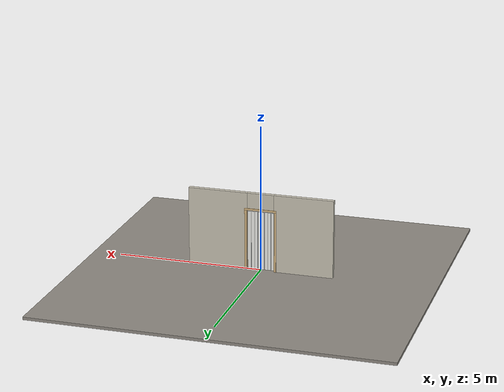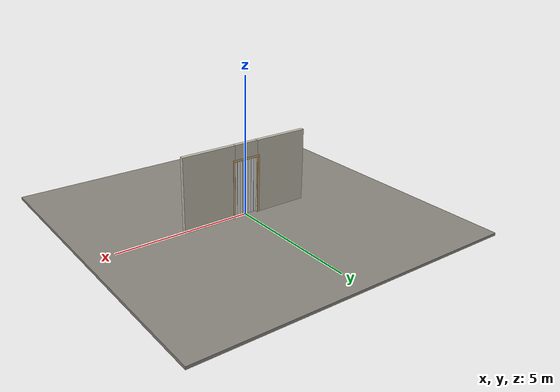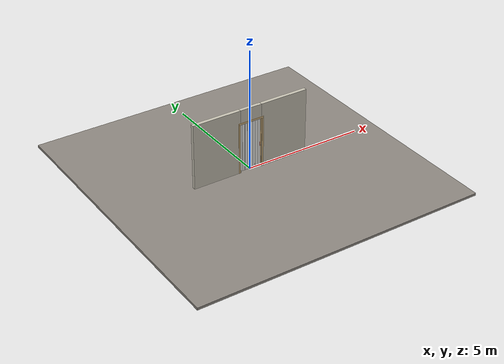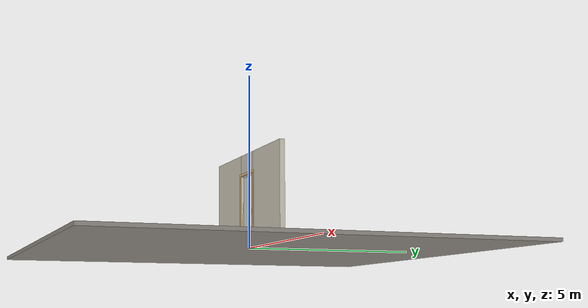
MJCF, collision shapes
<?xml version="1.0" ?>
<mujoco model="db0215_accordion_full">
  <compiler angle="radian" meshdir="../../hardware" texturedir="../../textures" autolimits="true" inertiafromgeom="false"/>
  <option timestep="0.002" integrator="implicitfast" cone="elliptic" impratio="10" noslip_iterations="3">
    <flag multiccd="enable"/>
  </option>
  <size memory="16M"/>
  <default>
    <geom condim="4" solref="0.005 1" solimp="0.95 0.99 0.001"/>
    <joint solreflimit="0.005 1" solimplimit="0.95 0.99 0.001"/>
    <tendon solreflimit="0.005 1"/>
    <equality solref="0.002 1"/>
  </default>
  <visual>
    <headlight ambient="0.4 0.4 0.4" diffuse="0.7 0.7 0.7" specular="0.2 0.2 0.2"/>
    <quality shadowsize="4096"/>
    <map znear="0.01" zfar="60"/>
  </visual>
  <asset>
    <mesh name="pull_1e5d69a91a" file="pull_1e5d69a91a.obj"/>
    <material name="mat_floor" rgba="0.55 0.53 0.5 1" specular="0.2" shininess="0.15" reflectance="0"/>
    <material name="mat_wall" rgba="0.78 0.76 0.7 1" specular="0.2" shininess="0.1" reflectance="0"/>
    <material name="mat_frame" rgba="0.82 0.7 0.5 1" specular="0.2" shininess="0.45" reflectance="0"/>
    <material name="mat_track" rgba="0.8 0.81 0.83 1" specular="0.8" shininess="0.6" reflectance="0.4"/>
    <material name="mat_hinge" rgba="0.65 0.66 0.68 1" specular="0.74" shininess="0.5" reflectance="0.36"/>
    <material name="mat_panel_0_0" rgba="0.93 0.93 0.91 1" specular="0.2" shininess="0.58" reflectance="0"/>
    <material name="mat_panel_0_1" rgba="0.93 0.93 0.91 1" specular="0.2" shininess="0.58" reflectance="0"/>
    <material name="mat_panel_0_2" rgba="0.93 0.93 0.91 1" specular="0.2" shininess="0.58" reflectance="0"/>
    <material name="mat_panel_0_3" rgba="0.93 0.93 0.91 1" specular="0.2" shininess="0.58" reflectance="0"/>
    <material name="mat_panel_0_4" rgba="0.93 0.93 0.91 1" specular="0.2" shininess="0.58" reflectance="0"/>
    <material name="mat_panel_0_5" rgba="0.93 0.93 0.91 1" specular="0.2" shininess="0.58" reflectance="0"/>
    <material name="mat_panel_0_6" rgba="0.93 0.93 0.91 1" specular="0.2" shininess="0.58" reflectance="0"/>
    <material name="mat_panel_0_7" rgba="0.93 0.93 0.91 1" specular="0.2" shininess="0.58" reflectance="0"/>
    <material name="mat_op_stainless" rgba="0.75 0.76 0.77 1" specular="0.8" shininess="0.65" reflectance="0.4"/>
    <texture name="skybox" type="skybox" builtin="gradient" rgb1="0.6 0.7 0.85" rgb2="0.9 0.92 0.95" width="256" height="256"/>
  </asset>
  <worldbody>
    <light name="sun" pos="1.5 -2.5 4" dir="-0.3 0.5 -0.8" directional="true" diffuse="0.8 0.8 0.8" specular="0.3 0.3 0.3" castshadow="true"/>
    <light name="fill" pos="-1.5 2.5 3" dir="0.3 -0.5 -0.7" directional="true" diffuse="0.35 0.35 0.4" castshadow="false"/>
    <camera name="robot_view" pos="0 -2.581563 1.766338" xyaxes="1 0 0 0 0.26963 0.962964" fovy="52"/>
    <camera name="far_view" pos="0 2.581563 1.766338" xyaxes="-1 0 0 0 -0.26963 0.962964" fovy="52"/>
    <camera name="iso" pos="1.961988 -2.168513 2.179388" xyaxes="0.741536 0.670913 0 -0.242917 0.268487 0.932151" fovy="46"/>
    <camera name="detail_handle" pos="0.574894 -0.866 1.28" xyaxes="0.97561 0.219512 0 -0.070934 0.315262 0.94635" fovy="38"/>
    <geom name="floor" type="box" size="6 6 0.05" pos="0 0 -0.05" material="mat_floor" group="0" contype="1" conaffinity="1" friction="0.8 0.005 0.0001" density="2400"/>
    <geom name="wall_left" type="box" size="1.01875 0.0725 1.35" pos="-1.48125 0 1.35" material="mat_wall" group="0" contype="1" conaffinity="1" friction="0.6 0.005 0.0001" density="800"/>
    <geom name="wall_right" type="box" size="1.01875 0.0725 1.35" pos="1.48125 0 1.35" material="mat_wall" group="0" contype="1" conaffinity="1" friction="0.6 0.005 0.0001" density="800"/>
    <geom name="wall_header" type="box" size="0.4625 0.0725 0.3065" pos="0 0 2.3935" material="mat_wall" group="0" contype="1" conaffinity="1" friction="0.6 0.005 0.0001" density="800"/>
    <geom name="jamb_hinge" type="box" size="0.0095 0.0725 1.0435" pos="-0.472 0 1.0435" material="mat_frame" group="0" contype="1" conaffinity="1" friction="0.6 0.005 0.0001" density="400"/>
    <geom name="jamb_strike" type="box" size="0.0095 0.0725 1.0435" pos="0.472 0 1.0435" material="mat_frame" group="0" contype="1" conaffinity="1" friction="0.6 0.005 0.0001" density="400"/>
    <geom name="stud_strike" type="box" size="0.015 0.0725 1.0435" pos="0.4965 0 1.0435" material="mat_wall" group="0" contype="1" conaffinity="1" friction="0.6 0.005 0.0001" density="500"/>
    <geom name="jamb_head" type="box" size="0.4965 0.0725 0.0095" pos="0.015 0 2.0965" material="mat_frame" group="0" contype="1" conaffinity="1" friction="0.6 0.005 0.0001" density="400"/>
    <geom name="head_stud" type="box" size="0.4965 0.0725 0.015" pos="0.015 0 2.121" material="mat_wall" group="0" contype="1" conaffinity="1" friction="0.6 0.005 0.0001" density="500"/>
    <geom name="casing_l_n" type="box" size="0.035 0.008 1.053" pos="-0.5115 -0.0805 1.0435" material="mat_frame" group="2" contype="0" conaffinity="0" density="400"/>
    <geom name="casing_r_n" type="box" size="0.035 0.008 1.053" pos="0.5115 -0.0805 1.0435" material="mat_frame" group="2" contype="0" conaffinity="0" density="400"/>
    <geom name="casing_h_n" type="box" size="0.5465 0.008 0.035" pos="0 -0.0805 2.136" material="mat_frame" group="2" contype="0" conaffinity="0" density="400"/>
    <geom name="casing_l_p" type="box" size="0.035 0.008 1.053" pos="-0.5115 0.0805 1.0435" material="mat_frame" group="2" contype="0" conaffinity="0" density="400"/>
    <geom name="casing_r_p" type="box" size="0.035 0.008 1.053" pos="0.5115 0.0805 1.0435" material="mat_frame" group="2" contype="0" conaffinity="0" density="400"/>
    <geom name="casing_h_p" type="box" size="0.5465 0.008 0.035" pos="0 0.0805 2.136" material="mat_frame" group="2" contype="0" conaffinity="0" density="400"/>
    <geom name="fold_track" type="box" size="0.4625 0.02 0.015" pos="0 0 2.072" material="mat_track" group="1" contype="0" conaffinity="0" density="2700"/>
    <site name="approach_point" pos="0 -1.5 0" quat="1 0 0 0" size="0.05" rgba="0.2 0.9 0.2 0.5" group="4"/>
    <site name="goal_point" pos="0 1.5 0" quat="1 0 0 0" size="0.05" rgba="0.2 0.9 0.2 0.5" group="4"/>
    <site name="door_plane_center" pos="0 0 1.0435" quat="1 0 0 0" size="0.02" rgba="0.2 0.9 0.2 0.5" group="4"/>
    <body name="panel_0_0" pos="-0.4625 0 0">
      <inertial pos="0.058237 0 1.047378" mass="3.661296" quat="0.499812 0.499812 -0.500188 0.500188" diaginertia="0.003520486 1.287614554 1.291046841"/>
      <joint name="panel_0_0_hinge" type="hinge" axis="0 0 -1" pos="0.035 0 0" limited="true" range="0 1.48353" damping="0.916842" frictionloss="3.828596" armature="0.02"/>
      <geom name="panel_0_0_slab" type="box" size="0.0535 0.006 1.016" pos="0.0585 0 1.036" material="mat_panel_0_0" group="0" contype="1" conaffinity="1" friction="0.4 0.005 0.0001" density="1"/>
      <geom name="panel_0_0_pivot_pin" type="cylinder" size="0.008 0.0105" pos="0.035 0 2.0525" material="mat_hinge" group="1" contype="0" conaffinity="0" density="7850"/>
      <body name="panel_0_1" pos="0.114 0 0">
        <inertial pos="0.000152 0.005984 1.036" mass="3.937195" quat="0.519713 -0.479477 0.519713 0.479477" diaginertia="0.000084796 1.328285099 1.32832971"/>
        <joint name="panel_0_1_hinge" type="hinge" axis="0 0 -1" pos="0 0.006 0" limited="true" range="-3.141593 0" damping="0.2" frictionloss="0.1" armature="0.005"/>
        <geom name="panel_0_1_slab" type="box" size="0.055 0.006 1.016" pos="0.057 0 1.036" material="mat_panel_0_1" group="0" contype="1" conaffinity="1" friction="0.4 0.005 0.0001" density="1"/>
        <geom name="panel_0_1_knuckle" type="cylinder" size="0.0045 1.006" pos="0 0.006 1.036" material="mat_hinge" group="1" contype="0" conaffinity="0" density="7850"/>
        <body name="panel_0_2" pos="0.114 0 0">
          <inertial pos="0.000152 -0.005984 1.036" mass="3.937195" quat="0.479477 -0.519713 0.479477 0.519713" diaginertia="0.000084796 1.328285099 1.32832971"/>
          <joint name="panel_0_2_hinge" type="hinge" axis="0 0 -1" pos="0 -0.006 0" limited="true" range="0 3.141593" damping="0.2" frictionloss="0.1" armature="0.005"/>
          <geom name="panel_0_2_slab" type="box" size="0.055 0.006 1.016" pos="0.057 0 1.036" material="mat_panel_0_2" group="0" contype="1" conaffinity="1" friction="0.4 0.005 0.0001" density="1"/>
          <geom name="panel_0_2_knuckle" type="cylinder" size="0.0045 1.006" pos="0 -0.006 1.036" material="mat_hinge" group="1" contype="0" conaffinity="0" density="7850"/>
          <body name="panel_0_3" pos="0.114 0 0">
            <inertial pos="0.000152 0.005984 1.036" mass="3.937195" quat="0.519713 -0.479477 0.519713 0.479477" diaginertia="0.000084796 1.328285099 1.32832971"/>
            <joint name="panel_0_3_hinge" type="hinge" axis="0 0 -1" pos="0 0.006 0" limited="true" range="-3.141593 0" damping="0.2" frictionloss="0.1" armature="0.005"/>
            <geom name="panel_0_3_slab" type="box" size="0.055 0.006 1.016" pos="0.057 0 1.036" material="mat_panel_0_3" group="0" contype="1" conaffinity="1" friction="0.4 0.005 0.0001" density="1"/>
            <geom name="panel_0_3_knuckle" type="cylinder" size="0.0045 1.006" pos="0 0.006 1.036" material="mat_hinge" group="1" contype="0" conaffinity="0" density="7850"/>
            <body name="panel_0_4" pos="0.114 0 0">
              <inertial pos="0.000152 -0.005984 1.036" mass="3.937195" quat="0.479477 -0.519713 0.479477 0.519713" diaginertia="0.000084796 1.328285099 1.32832971"/>
              <joint name="panel_0_4_hinge" type="hinge" axis="0 0 -1" pos="0 -0.006 0" limited="true" range="0 3.141593" damping="0.2" frictionloss="0.1" armature="0.005"/>
              <geom name="panel_0_4_slab" type="box" size="0.055 0.006 1.016" pos="0.057 0 1.036" material="mat_panel_0_4" group="0" contype="1" conaffinity="1" friction="0.4 0.005 0.0001" density="1"/>
              <geom name="panel_0_4_knuckle" type="cylinder" size="0.0045 1.006" pos="0 -0.006 1.036" material="mat_hinge" group="1" contype="0" conaffinity="0" density="7850"/>
              <body name="panel_0_5" pos="0.114 0 0">
                <inertial pos="0.000152 0.005984 1.036" mass="3.937195" quat="0.519713 -0.479477 0.519713 0.479477" diaginertia="0.000084796 1.328285099 1.32832971"/>
                <joint name="panel_0_5_hinge" type="hinge" axis="0 0 -1" pos="0 0.006 0" limited="true" range="-3.141593 0" damping="0.2" frictionloss="0.1" armature="0.005"/>
                <geom name="panel_0_5_slab" type="box" size="0.055 0.006 1.016" pos="0.057 0 1.036" material="mat_panel_0_5" group="0" contype="1" conaffinity="1" friction="0.4 0.005 0.0001" density="1"/>
                <geom name="panel_0_5_knuckle" type="cylinder" size="0.0045 1.006" pos="0 0.006 1.036" material="mat_hinge" group="1" contype="0" conaffinity="0" density="7850"/>
                <body name="panel_0_6" pos="0.114 0 0">
                  <inertial pos="0.000152 -0.005984 1.036" mass="3.937195" quat="0.479477 -0.519713 0.479477 0.519713" diaginertia="0.000084796 1.328285099 1.32832971"/>
                  <joint name="panel_0_6_hinge" type="hinge" axis="0 0 -1" pos="0 -0.006 0" limited="true" range="0 3.141593" damping="0.2" frictionloss="0.1" armature="0.005"/>
                  <geom name="panel_0_6_slab" type="box" size="0.055 0.006 1.016" pos="0.057 0 1.036" material="mat_panel_0_6" group="0" contype="1" conaffinity="1" friction="0.4 0.005 0.0001" density="1"/>
                  <geom name="panel_0_6_knuckle" type="cylinder" size="0.0045 1.006" pos="0 -0.006 1.036" material="mat_hinge" group="1" contype="0" conaffinity="0" density="7850"/>
                  <body name="panel_0_7" pos="0.114 0 0">
                    <inertial pos="0.018445 -0.013231 1.024892" mass="4.39978" quat="0.660552 0.25039 -0.661326 0.252238" diaginertia="0.007581374 1.032026058 1.0389954"/>
                    <joint name="panel_0_7_hinge" type="hinge" axis="0 0 -1" pos="0 0.006 0" limited="true" range="-3.141593 0" damping="0.2" frictionloss="0.1" armature="0.005"/>
                    <geom name="panel_0_7_slab" type="box" size="0.058697 0.006 1.016" pos="0.060697 0 1.036" material="mat_panel_0_7" group="0" contype="1" conaffinity="1" friction="0.4 0.005 0.0001" density="1"/>
                    <geom name="panel_0_7_knuckle" type="cylinder" size="0.0045 1.006" pos="0 0.006 1.036" material="mat_hinge" group="1" contype="0" conaffinity="0" density="7850"/>
                    <geom name="panel_0_7_pull_n" type="mesh" mesh="pull_1e5d69a91a" pos="0.059394 -0.006 1" quat="0.707107 0.707107 0 0" material="mat_op_stainless" group="1" contype="0" conaffinity="0" density="3000"/>
                    <geom name="panel_0_7_pull_col_n" type="capsule" size="0.0095 0.08" pos="0.059394 -0.066 1" material="mat_op_stainless" group="3" contype="1" conaffinity="1" rgba="0.8 0.3 0.3 0.25" friction="0.7 0.01 0.0001" density="3000"/>
                    <site name="panel_0_7_pull_grip_n" pos="0.059394 -0.066 1" quat="1 0 0 0" size="0.012" rgba="0.2 0.9 0.2 0.5" group="4"/>
                  </body>
                </body>
              </body>
            </body>
          </body>
        </body>
      </body>
    </body>
  </worldbody>
  <equality>
    <joint name="panel_0_1_couple" joint1="panel_0_1_hinge" joint2="panel_0_0_hinge" polycoef="0 -2 0 0 0" active="true"/>
    <joint name="panel_0_2_couple" joint1="panel_0_2_hinge" joint2="panel_0_0_hinge" polycoef="0 2 0 0 0" active="true"/>
    <joint name="panel_0_3_couple" joint1="panel_0_3_hinge" joint2="panel_0_0_hinge" polycoef="0 -2 0 0 0" active="true"/>
    <joint name="panel_0_4_couple" joint1="panel_0_4_hinge" joint2="panel_0_0_hinge" polycoef="0 2 0 0 0" active="true"/>
    <joint name="panel_0_5_couple" joint1="panel_0_5_hinge" joint2="panel_0_0_hinge" polycoef="0 -2 0 0 0" active="true"/>
    <joint name="panel_0_6_couple" joint1="panel_0_6_hinge" joint2="panel_0_0_hinge" polycoef="0 2 0 0 0" active="true"/>
    <joint name="panel_0_7_couple" joint1="panel_0_7_hinge" joint2="panel_0_0_hinge" polycoef="0 -2 0 0 0" active="true"/>
  </equality>
  <sensor>
    <jointpos name="panel_0_0_hinge_pos" joint="panel_0_0_hinge"/>
    <jointvel name="panel_0_0_hinge_vel" joint="panel_0_0_hinge"/>
    <jointpos name="panel_0_1_hinge_pos" joint="panel_0_1_hinge"/>
    <jointvel name="panel_0_1_hinge_vel" joint="panel_0_1_hinge"/>
    <jointpos name="panel_0_2_hinge_pos" joint="panel_0_2_hinge"/>
    <jointvel name="panel_0_2_hinge_vel" joint="panel_0_2_hinge"/>
    <jointpos name="panel_0_3_hinge_pos" joint="panel_0_3_hinge"/>
    <jointvel name="panel_0_3_hinge_vel" joint="panel_0_3_hinge"/>
    <jointpos name="panel_0_4_hinge_pos" joint="panel_0_4_hinge"/>
    <jointvel name="panel_0_4_hinge_vel" joint="panel_0_4_hinge"/>
    <jointpos name="panel_0_5_hinge_pos" joint="panel_0_5_hinge"/>
    <jointvel name="panel_0_5_hinge_vel" joint="panel_0_5_hinge"/>
    <jointpos name="panel_0_6_hinge_pos" joint="panel_0_6_hinge"/>
    <jointvel name="panel_0_6_hinge_vel" joint="panel_0_6_hinge"/>
    <jointpos name="panel_0_7_hinge_pos" joint="panel_0_7_hinge"/>
    <jointvel name="panel_0_7_hinge_vel" joint="panel_0_7_hinge"/>
  </sensor>
</mujoco>
